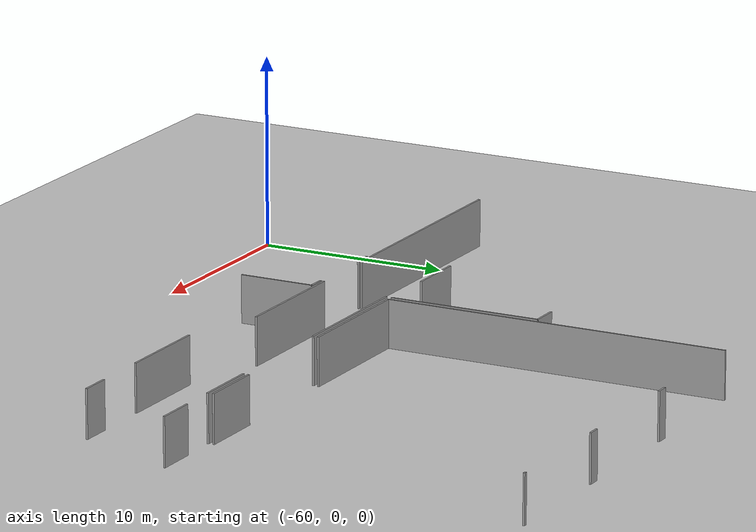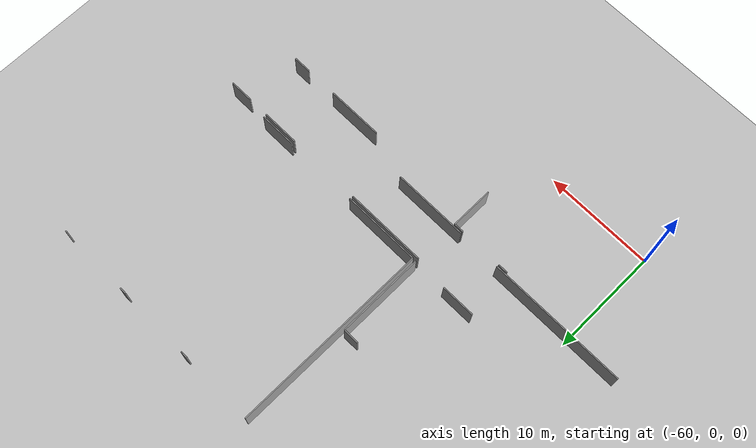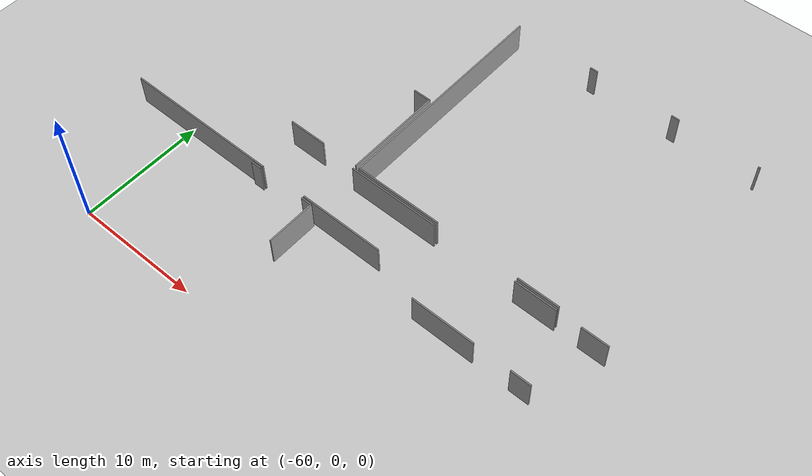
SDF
<sdf version="1.6">
 <world name="default">
  <model name="ground_plane">
   <static>1</static>
   <link name="link">
    <collision name="collision">
     <geometry><plane><normal>0 0 1</normal><size>100 100</size></plane></geometry>
     <surface><friction><ode><mu>100</mu><mu2>50</mu2></ode></friction></surface>
    </collision>
    <visual name="visual">
     <cast_shadows>0</cast_shadows>
     <geometry><plane><normal>0 0 1</normal><size>100 100</size></plane></geometry>
     <material>
      <script><uri>file://media/materials/scripts/gazebo.material</uri><name>Gazebo/Grey</name></script>
     </material>
    </visual>
   </link>
  </model>
  <model name="0510032217_A-40">
   <static>1</static>
   <link name="Wall_7">
    <collision name="Wall_7_Collision">
     <geometry><box><size>7.48045883667 0.1 2.5</size></box></geometry>
     <pose>3.74022941833 0 1.25 0 0 0</pose>
    </collision>
    <visual name="Wall_7_Visual">
     <pose>3.74022941833 0 1.25 0 0 0</pose>
     <geometry><box><size>7.48045883667 0.1 2.5</size></box></geometry>
     <material>
      <script><uri>file://media/materials/scripts/gazebo.material</uri><name>Gazebo/Grey</name></script>
      <ambient>1 1 1 1</ambient>
     </material>
    </visual>
    <pose>29.5008755456 -39.4602324637 0 0 0 0.0</pose>
   </link>
   <link name="Wall_8">
    <collision name="Wall_8_Collision">
     <geometry><box><size>3.43188508781 0.1 2.5</size></box></geometry>
     <pose>1.7159425439 0 1.25 0 0 0</pose>
    </collision>
    <visual name="Wall_8_Visual">
     <pose>1.7159425439 0 1.25 0 0 0</pose>
     <geometry><box><size>3.43188508781 0.1 2.5</size></box></geometry>
     <material>
      <script><uri>file://media/materials/scripts/gazebo.material</uri><name>Gazebo/Grey</name></script>
      <ambient>1 1 1 1</ambient>
     </material>
    </visual>
    <pose>43.8326692722 -39.4602324637 0 0 0 0.0</pose>
   </link>
   <link name="Wall_9">
    <collision name="Wall_9_Collision">
     <geometry><box><size>2.17427164755 0.1 2.5</size></box></geometry>
     <pose>1.08713582377 0 1.25 0 0 0</pose>
    </collision>
    <visual name="Wall_9_Visual">
     <pose>1.08713582377 0 1.25 0 0 0</pose>
     <geometry><box><size>2.17427164755 0.1 2.5</size></box></geometry>
     <material>
      <script><uri>file://media/materials/scripts/gazebo.material</uri><name>Gazebo/Grey</name></script>
      <ambient>1 1 1 1</ambient>
     </material>
    </visual>
    <pose>49.1814917267 -39.4602324637 0 0 0 0.0</pose>
   </link>
   <link name="Wall_42">
    <collision name="Wall_42_Collision">
     <geometry><box><size>1.62686529286 0.1 2.5</size></box></geometry>
     <pose>0.813432646432 0 1.25 0 0 0</pose>
    </collision>
    <visual name="Wall_42_Visual">
     <pose>0.813432646432 0 1.25 0 0 0</pose>
     <geometry><box><size>1.62686529286 0.1 2.5</size></box></geometry>
     <material>
      <script><uri>file://media/materials/scripts/gazebo.material</uri><name>Gazebo/Grey</name></script>
      <ambient>1 1 1 1</ambient>
     </material>
    </visual>
    <pose>49.317518526 -44.8070246675 0 0 0 3.14159265359</pose>
   </link>
   <link name="Wall_43">
    <collision name="Wall_43_Collision">
     <geometry><box><size>5.13970662877 0.1 2.5</size></box></geometry>
     <pose>2.56985331438 0 1.25 0 0 0</pose>
    </collision>
    <visual name="Wall_43_Visual">
     <pose>2.56985331438 0 1.25 0 0 0</pose>
     <geometry><box><size>5.13970662877 0.1 2.5</size></box></geometry>
     <material>
      <script><uri>file://media/materials/scripts/gazebo.material</uri><name>Gazebo/Grey</name></script>
      <ambient>1 1 1 1</ambient>
     </material>
    </visual>
    <pose>44.7474241194 -44.8070246675 0 0 0 3.14159265359</pose>
   </link>
   <link name="Wall_46">
    <collision name="Wall_46_Collision">
     <geometry><box><size>6.87671302406 0.1 2.5</size></box></geometry>
     <pose>3.43835651203 0 1.25 0 0 0</pose>
    </collision>
    <visual name="Wall_46_Visual">
     <pose>3.43835651203 0 1.25 0 0 0</pose>
     <geometry><box><size>6.87671302406 0.1 2.5</size></box></geometry>
     <material>
      <script><uri>file://media/materials/scripts/gazebo.material</uri><name>Gazebo/Grey</name></script>
      <ambient>1 1 1 1</ambient>
     </material>
    </visual>
    <pose>35.4738732108 -43.4284844178 0 0 0 3.14159265359</pose>
   </link>
   <link name="Wall_47">
    <collision name="Wall_47_Collision">
     <geometry><box><size>12.7759893292 0.1 2.5</size></box></geometry>
     <pose>6.3879946646 0 1.25 0 0 0</pose>
    </collision>
    <visual name="Wall_47_Visual">
     <pose>6.3879946646 0 1.25 0 0 0</pose>
     <geometry><box><size>12.7759893292 0.1 2.5</size></box></geometry>
     <material>
      <script><uri>file://media/materials/scripts/gazebo.material</uri><name>Gazebo/Grey</name></script>
      <ambient>1 1 1 1</ambient>
     </material>
    </visual>
    <pose>24.6857552533 -43.4284844178 0 0 0 3.14101659962</pose>
   </link>
   <link name="Wall_48">
    <collision name="Wall_48_Collision">
     <geometry><box><size>3.10387270328 0.1 2.5</size></box></geometry>
     <pose>1.55193635164 0 1.25 0 0 0</pose>
    </collision>
    <visual name="Wall_48_Visual">
     <pose>1.55193635164 0 1.25 0 0 0</pose>
     <geometry><box><size>3.10387270328 0.1 2.5</size></box></geometry>
     <material>
      <script><uri>file://media/materials/scripts/gazebo.material</uri><name>Gazebo/Grey</name></script>
      <ambient>1 1 1 1</ambient>
     </material>
    </visual>
    <pose>26.4331666836 -39.1633082936 0 0 0 3.14159265359</pose>
   </link>
   <link name="Wall_53">
    <collision name="Wall_53_Collision">
     <geometry><box><size>1.44071667851 0.1 2.5</size></box></geometry>
     <pose>0.720358339255 0 1.25 0 0 0</pose>
    </collision>
    <visual name="Wall_53_Visual">
     <pose>0.720358339255 0 1.25 0 0 0</pose>
     <geometry><box><size>1.44071667851 0.1 2.5</size></box></geometry>
     <material>
      <script><uri>file://media/materials/scripts/gazebo.material</uri><name>Gazebo/Grey</name></script>
      <ambient>1 1 1 1</ambient>
     </material>
    </visual>
    <pose>28.0437899706 -31.1858186986 0 0 0 0.0</pose>
   </link>
   <link name="Wall_54">
    <collision name="Wall_54_Collision">
     <geometry><box><size>7.97756425685 0.1 2.5</size></box></geometry>
     <pose>3.98878212842 0 1.25 0 0 0</pose>
    </collision>
    <visual name="Wall_54_Visual">
     <pose>3.98878212842 0 1.25 0 0 0</pose>
     <geometry><box><size>7.97756425685 0.1 2.5</size></box></geometry>
     <material>
      <script><uri>file://media/materials/scripts/gazebo.material</uri><name>Gazebo/Grey</name></script>
      <ambient>1 1 1 1</ambient>
     </material>
    </visual>
    <pose>29.4845066491 -31.1858186986 0 0 0 -1.56646989719</pose>
   </link>
   <link name="Wall_56">
    <collision name="Wall_56_Collision">
     <geometry><box><size>3.40079687341 0.1 2.5</size></box></geometry>
     <pose>1.70039843671 0 1.25 0 0 0</pose>
    </collision>
    <visual name="Wall_56_Visual">
     <pose>1.70039843671 0 1.25 0 0 0</pose>
     <geometry><box><size>3.40079687341 0.1 2.5</size></box></geometry>
     <material>
      <script><uri>file://media/materials/scripts/gazebo.material</uri><name>Gazebo/Grey</name></script>
      <ambient>1 1 1 1</ambient>
     </material>
    </visual>
    <pose>47.2305476601 -39.1716830779 0 0 0 3.14159265359</pose>
   </link>
   <link name="Wall_57">
    <collision name="Wall_57_Collision">
     <geometry><box><size>7.16729266064 0.1 2.5</size></box></geometry>
     <pose>3.58364633032 0 1.25 0 0 0</pose>
    </collision>
    <visual name="Wall_57_Visual">
     <pose>3.58364633032 0 1.25 0 0 0</pose>
     <geometry><box><size>7.16729266064 0.1 2.5</size></box></geometry>
     <material>
      <script><uri>file://media/materials/scripts/gazebo.material</uri><name>Gazebo/Grey</name></script>
      <ambient>1 1 1 1</ambient>
     </material>
    </visual>
    <pose>37.0174982235 -39.1716830779 0 0 0 3.14159265359</pose>
   </link>
   <link name="Wall_58">
    <collision name="Wall_58_Collision">
     <geometry><box><size>18.1996751599 0.1 2.5</size></box></geometry>
     <pose>9.09983757994 0 1.25 0 0 0</pose>
    </collision>
    <visual name="Wall_58_Visual">
     <pose>9.09983757994 0 1.25 0 0 0</pose>
     <geometry><box><size>18.1996751599 0.1 2.5</size></box></geometry>
     <material>
      <script><uri>file://media/materials/scripts/gazebo.material</uri><name>Gazebo/Grey</name></script>
      <ambient>1 1 1 1</ambient>
     </material>
    </visual>
    <pose>29.8502055629 -39.1716830779 0 0 0 1.57079632679</pose>
   </link>
   <link name="Wall_59">
    <collision name="Wall_59_Collision">
     <geometry><box><size>0.643970155314 0.1 2.5</size></box></geometry>
     <pose>0.321985077657 0 1.25 0 0 0</pose>
    </collision>
    <visual name="Wall_59_Visual">
     <pose>0.321985077657 0 1.25 0 0 0</pose>
     <geometry><box><size>0.643970155314 0.1 2.5</size></box></geometry>
     <material>
      <script><uri>file://media/materials/scripts/gazebo.material</uri><name>Gazebo/Grey</name></script>
      <ambient>1 1 1 1</ambient>
     </material>
    </visual>
    <pose>36.4967389098 -20.972007918 0 0 0 0.0</pose>
   </link>
   <link name="Wall_60">
    <collision name="Wall_60_Collision">
     <geometry><box><size>0.653486955639 0.1 2.5</size></box></geometry>
     <pose>0.32674347782 0 1.25 0 0 0</pose>
    </collision>
    <visual name="Wall_60_Visual">
     <pose>0.32674347782 0 1.25 0 0 0</pose>
     <geometry><box><size>0.653486955639 0.1 2.5</size></box></geometry>
     <material>
      <script><uri>file://media/materials/scripts/gazebo.material</uri><name>Gazebo/Grey</name></script>
      <ambient>1 1 1 1</ambient>
     </material>
    </visual>
    <pose>43.69042483 -20.972007918 0 0 0 0.0</pose>
   </link>
   <link name="Wall_61">
    <collision name="Wall_61_Collision">
     <geometry><box><size>0.173078875241 0.1 2.5</size></box></geometry>
     <pose>0.0865394376205 0 1.25 0 0 0</pose>
    </collision>
    <visual name="Wall_61_Visual">
     <pose>0.0865394376205 0 1.25 0 0 0</pose>
     <geometry><box><size>0.173078875241 0.1 2.5</size></box></geometry>
     <material>
      <script><uri>file://media/materials/scripts/gazebo.material</uri><name>Gazebo/Grey</name></script>
      <ambient>1 1 1 1</ambient>
     </material>
    </visual>
    <pose>50.898068724 -20.972007918 0 0 0 0.0</pose>
   </link>
   <link name="Wall_390">
    <collision name="Wall_390_Collision">
     <geometry><box><size>0.905111156228 0.1 2.5</size></box></geometry>
     <pose>0.452555578114 0 1.25 0 0 0</pose>
    </collision>
    <visual name="Wall_390_Visual">
     <pose>0.452555578114 0 1.25 0 0 0</pose>
     <geometry><box><size>0.905111156228 0.1 2.5</size></box></geometry>
     <material>
      <script><uri>file://media/materials/scripts/gazebo.material</uri><name>Gazebo/Grey</name></script>
      <ambient>1 1 1 1</ambient>
     </material>
    </visual>
    <pose>23.7537432748 -43.6241498325 0 0 0 0.0</pose>
   </link>
   <link name="Wall_391">
    <collision name="Wall_391_Collision">
     <geometry><box><size>0.901050654756 0.1 2.5</size></box></geometry>
     <pose>0.450525327378 0 1.25 0 0 0</pose>
    </collision>
    <visual name="Wall_391_Visual">
     <pose>0.450525327378 0 1.25 0 0 0</pose>
     <geometry><box><size>0.901050654756 0.1 2.5</size></box></geometry>
     <material>
      <script><uri>file://media/materials/scripts/gazebo.material</uri><name>Gazebo/Grey</name></script>
      <ambient>1 1 1 1</ambient>
     </material>
    </visual>
    <pose>28.5845980104 -43.6241498325 0 0 0 0.0</pose>
   </link>
   <link name="Wall_392">
    <collision name="Wall_392_Collision">
     <geometry><box><size>3.93906709979 0.1 2.5</size></box></geometry>
     <pose>1.96953354989 0 1.25 0 0 0</pose>
    </collision>
    <visual name="Wall_392_Visual">
     <pose>1.96953354989 0 1.25 0 0 0</pose>
     <geometry><box><size>3.93906709979 0.1 2.5</size></box></geometry>
     <material>
      <script><uri>file://media/materials/scripts/gazebo.material</uri><name>Gazebo/Grey</name></script>
      <ambient>1 1 1 1</ambient>
     </material>
    </visual>
    <pose>29.4856486651 -43.6241498325 0 0 0 -1.57079632679</pose>
   </link>
   <pose>-76.8 53.1213480865 0 0 0 0</pose>
  </model>
 </world>
</sdf>
